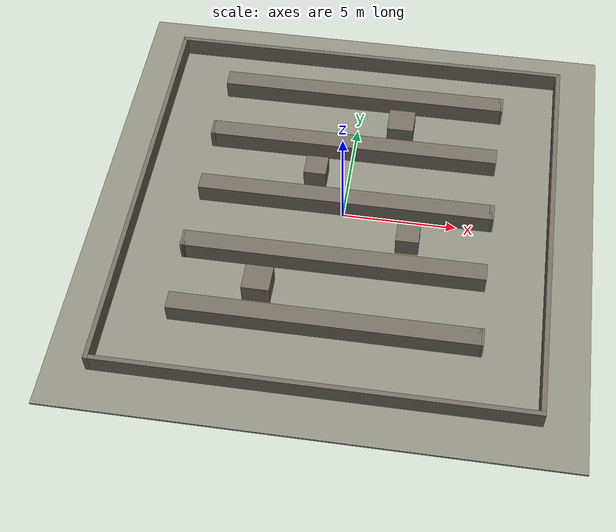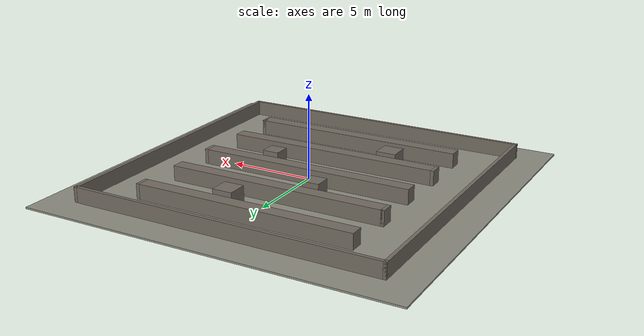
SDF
<?xml version="1.0" ?>
<sdf version="1.7">
  <world name="nav_warehouse">
    <physics type="ode">
      <max_step_size>0.01</max_step_size>
    </physics>

    <light name="sun" type="directional">
      <cast_shadows>true</cast_shadows>
      <pose>0 0 10 0 0 0</pose>
      <diffuse>0.8 0.8 0.8 1</diffuse>
      <specular>0.3 0.3 0.3 1</specular>
      <attenuation>
        <range>1000</range>
        <constant>0.9</constant>
        <linear>0.01</linear>
        <quadratic>0.001</quadratic>
      </attenuation>
      <direction>-0.5 0.3 -1.0</direction>
    </light>

    <model name="ground_plane">
      <static>true</static>
      <pose>0 0 -0.05 0 0 0</pose>
      <link name="link">
        <collision name="collision">
          <geometry>
            <box><size>22.0 22.0 0.1</size></box>
          </geometry>
          <surface>
            <friction>
              <ode><mu>100</mu><mu2>50</mu2></ode>
            </friction>
          </surface>
        </collision>
        <visual name="visual">
          <geometry>
            <box><size>22.0 22.0 0.1</size></box>
          </geometry>
          <material>
            <ambient>0.55 0.55 0.5 1</ambient>
            <diffuse>0.55 0.55 0.5 1</diffuse>
          </material>
        </visual>
      </link>
    </model>

    <model name="obstacle_00">
      <static>true</static>
      <pose>0.000 -9.100 0 0 0 0</pose>
      <link name="link">
        <collision name="collision">
          <geometry>
            <box><size>18.400 0.200 1.800</size></box>
          </geometry>
        </collision>
        <visual name="visual">
          <geometry>
            <box><size>18.400 0.200 1.800</size></box>
          </geometry>
          <material>
            <ambient>0.45 0.42 0.38 1</ambient>
            <diffuse>0.45 0.42 0.38 1</diffuse>
            <specular>0.1 0.1 0.1 1</specular>
          </material>
        </visual>
      </link>
    </model>

    <model name="obstacle_01">
      <static>true</static>
      <pose>0.000 9.100 0 0 0 0</pose>
      <link name="link">
        <collision name="collision">
          <geometry>
            <box><size>18.400 0.200 1.800</size></box>
          </geometry>
        </collision>
        <visual name="visual">
          <geometry>
            <box><size>18.400 0.200 1.800</size></box>
          </geometry>
          <material>
            <ambient>0.45 0.42 0.38 1</ambient>
            <diffuse>0.45 0.42 0.38 1</diffuse>
            <specular>0.1 0.1 0.1 1</specular>
          </material>
        </visual>
      </link>
    </model>

    <model name="obstacle_02">
      <static>true</static>
      <pose>-9.100 0.000 0 0 0 0</pose>
      <link name="link">
        <collision name="collision">
          <geometry>
            <box><size>0.200 18.400 1.800</size></box>
          </geometry>
        </collision>
        <visual name="visual">
          <geometry>
            <box><size>0.200 18.400 1.800</size></box>
          </geometry>
          <material>
            <ambient>0.45 0.42 0.38 1</ambient>
            <diffuse>0.45 0.42 0.38 1</diffuse>
            <specular>0.1 0.1 0.1 1</specular>
          </material>
        </visual>
      </link>
    </model>

    <model name="obstacle_03">
      <static>true</static>
      <pose>9.100 0.000 0 0 0 0</pose>
      <link name="link">
        <collision name="collision">
          <geometry>
            <box><size>0.200 18.400 1.800</size></box>
          </geometry>
        </collision>
        <visual name="visual">
          <geometry>
            <box><size>0.200 18.400 1.800</size></box>
          </geometry>
          <material>
            <ambient>0.45 0.42 0.38 1</ambient>
            <diffuse>0.45 0.42 0.38 1</diffuse>
            <specular>0.1 0.1 0.1 1</specular>
          </material>
        </visual>
      </link>
    </model>

    <model name="obstacle_04">
      <static>true</static>
      <pose>0.000 -6.000 0 0 0 0</pose>
      <link name="link">
        <collision name="collision">
          <geometry>
            <box><size>13.000 0.800 1.800</size></box>
          </geometry>
        </collision>
        <visual name="visual">
          <geometry>
            <box><size>13.000 0.800 1.800</size></box>
          </geometry>
          <material>
            <ambient>0.45 0.42 0.38 1</ambient>
            <diffuse>0.45 0.42 0.38 1</diffuse>
            <specular>0.1 0.1 0.1 1</specular>
          </material>
        </visual>
      </link>
    </model>

    <model name="obstacle_05">
      <static>true</static>
      <pose>0.000 -2.800 0 0 0 0</pose>
      <link name="link">
        <collision name="collision">
          <geometry>
            <box><size>13.000 0.800 1.800</size></box>
          </geometry>
        </collision>
        <visual name="visual">
          <geometry>
            <box><size>13.000 0.800 1.800</size></box>
          </geometry>
          <material>
            <ambient>0.45 0.42 0.38 1</ambient>
            <diffuse>0.45 0.42 0.38 1</diffuse>
            <specular>0.1 0.1 0.1 1</specular>
          </material>
        </visual>
      </link>
    </model>

    <model name="obstacle_06">
      <static>true</static>
      <pose>0.000 0.400 0 0 0 0</pose>
      <link name="link">
        <collision name="collision">
          <geometry>
            <box><size>13.000 0.800 1.800</size></box>
          </geometry>
        </collision>
        <visual name="visual">
          <geometry>
            <box><size>13.000 0.800 1.800</size></box>
          </geometry>
          <material>
            <ambient>0.45 0.42 0.38 1</ambient>
            <diffuse>0.45 0.42 0.38 1</diffuse>
            <specular>0.1 0.1 0.1 1</specular>
          </material>
        </visual>
      </link>
    </model>

    <model name="obstacle_07">
      <static>true</static>
      <pose>0.000 3.600 0 0 0 0</pose>
      <link name="link">
        <collision name="collision">
          <geometry>
            <box><size>13.000 0.800 1.800</size></box>
          </geometry>
        </collision>
        <visual name="visual">
          <geometry>
            <box><size>13.000 0.800 1.800</size></box>
          </geometry>
          <material>
            <ambient>0.45 0.42 0.38 1</ambient>
            <diffuse>0.45 0.42 0.38 1</diffuse>
            <specular>0.1 0.1 0.1 1</specular>
          </material>
        </visual>
      </link>
    </model>

    <model name="obstacle_08">
      <static>true</static>
      <pose>0.000 6.800 0 0 0 0</pose>
      <link name="link">
        <collision name="collision">
          <geometry>
            <box><size>13.000 0.800 1.800</size></box>
          </geometry>
        </collision>
        <visual name="visual">
          <geometry>
            <box><size>13.000 0.800 1.800</size></box>
          </geometry>
          <material>
            <ambient>0.45 0.42 0.38 1</ambient>
            <diffuse>0.45 0.42 0.38 1</diffuse>
            <specular>0.1 0.1 0.1 1</specular>
          </material>
        </visual>
      </link>
    </model>

    <model name="obstacle_09">
      <static>true</static>
      <pose>-3.000 -4.400 0 0 0 0</pose>
      <link name="link">
        <collision name="collision">
          <geometry>
            <box><size>1.200 1.200 1.800</size></box>
          </geometry>
        </collision>
        <visual name="visual">
          <geometry>
            <box><size>1.200 1.200 1.800</size></box>
          </geometry>
          <material>
            <ambient>0.45 0.42 0.38 1</ambient>
            <diffuse>0.45 0.42 0.38 1</diffuse>
            <specular>0.1 0.1 0.1 1</specular>
          </material>
        </visual>
      </link>
    </model>

    <model name="obstacle_10">
      <static>true</static>
      <pose>3.000 -1.200 0 0 0 0</pose>
      <link name="link">
        <collision name="collision">
          <geometry>
            <box><size>1.000 1.000 1.800</size></box>
          </geometry>
        </collision>
        <visual name="visual">
          <geometry>
            <box><size>1.000 1.000 1.800</size></box>
          </geometry>
          <material>
            <ambient>0.45 0.42 0.38 1</ambient>
            <diffuse>0.45 0.42 0.38 1</diffuse>
            <specular>0.1 0.1 0.1 1</specular>
          </material>
        </visual>
      </link>
    </model>

    <model name="obstacle_11">
      <static>true</static>
      <pose>-1.500 2.000 0 0 0 0</pose>
      <link name="link">
        <collision name="collision">
          <geometry>
            <box><size>1.000 1.000 1.800</size></box>
          </geometry>
        </collision>
        <visual name="visual">
          <geometry>
            <box><size>1.000 1.000 1.800</size></box>
          </geometry>
          <material>
            <ambient>0.45 0.42 0.38 1</ambient>
            <diffuse>0.45 0.42 0.38 1</diffuse>
            <specular>0.1 0.1 0.1 1</specular>
          </material>
        </visual>
      </link>
    </model>

    <model name="obstacle_12">
      <static>true</static>
      <pose>2.000 5.200 0 0 0 0</pose>
      <link name="link">
        <collision name="collision">
          <geometry>
            <box><size>1.200 1.200 1.800</size></box>
          </geometry>
        </collision>
        <visual name="visual">
          <geometry>
            <box><size>1.200 1.200 1.800</size></box>
          </geometry>
          <material>
            <ambient>0.45 0.42 0.38 1</ambient>
            <diffuse>0.45 0.42 0.38 1</diffuse>
            <specular>0.1 0.1 0.1 1</specular>
          </material>
        </visual>
      </link>
    </model>

    <model name="obstacle_13">
      <static>true</static>
      <pose>6.500 -6.000 0 0 0 0</pose>
      <link name="link">
        <collision name="collision">
          <geometry>
            <box><size>0.200 0.800 1.800</size></box>
          </geometry>
        </collision>
        <visual name="visual">
          <geometry>
            <box><size>0.200 0.800 1.800</size></box>
          </geometry>
          <material>
            <ambient>0.45 0.42 0.38 1</ambient>
            <diffuse>0.45 0.42 0.38 1</diffuse>
            <specular>0.1 0.1 0.1 1</specular>
          </material>
        </visual>
      </link>
    </model>

    <model name="obstacle_14">
      <static>true</static>
      <pose>-6.500 -2.800 0 0 0 0</pose>
      <link name="link">
        <collision name="collision">
          <geometry>
            <box><size>0.200 0.800 1.800</size></box>
          </geometry>
        </collision>
        <visual name="visual">
          <geometry>
            <box><size>0.200 0.800 1.800</size></box>
          </geometry>
          <material>
            <ambient>0.45 0.42 0.38 1</ambient>
            <diffuse>0.45 0.42 0.38 1</diffuse>
            <specular>0.1 0.1 0.1 1</specular>
          </material>
        </visual>
      </link>
    </model>

    <model name="obstacle_15">
      <static>true</static>
      <pose>6.500 0.400 0 0 0 0</pose>
      <link name="link">
        <collision name="collision">
          <geometry>
            <box><size>0.200 0.800 1.800</size></box>
          </geometry>
        </collision>
        <visual name="visual">
          <geometry>
            <box><size>0.200 0.800 1.800</size></box>
          </geometry>
          <material>
            <ambient>0.45 0.42 0.38 1</ambient>
            <diffuse>0.45 0.42 0.38 1</diffuse>
            <specular>0.1 0.1 0.1 1</specular>
          </material>
        </visual>
      </link>
    </model>

    <model name="obstacle_16">
      <static>true</static>
      <pose>-6.500 3.600 0 0 0 0</pose>
      <link name="link">
        <collision name="collision">
          <geometry>
            <box><size>0.200 0.800 1.800</size></box>
          </geometry>
        </collision>
        <visual name="visual">
          <geometry>
            <box><size>0.200 0.800 1.800</size></box>
          </geometry>
          <material>
            <ambient>0.45 0.42 0.38 1</ambient>
            <diffuse>0.45 0.42 0.38 1</diffuse>
            <specular>0.1 0.1 0.1 1</specular>
          </material>
        </visual>
      </link>
    </model>

    <model name="obstacle_17">
      <static>true</static>
      <pose>6.500 6.800 0 0 0 0</pose>
      <link name="link">
        <collision name="collision">
          <geometry>
            <box><size>0.200 0.800 1.800</size></box>
          </geometry>
        </collision>
        <visual name="visual">
          <geometry>
            <box><size>0.200 0.800 1.800</size></box>
          </geometry>
          <material>
            <ambient>0.45 0.42 0.38 1</ambient>
            <diffuse>0.45 0.42 0.38 1</diffuse>
            <specular>0.1 0.1 0.1 1</specular>
          </material>
        </visual>
      </link>
    </model>

  </world>
</sdf>
